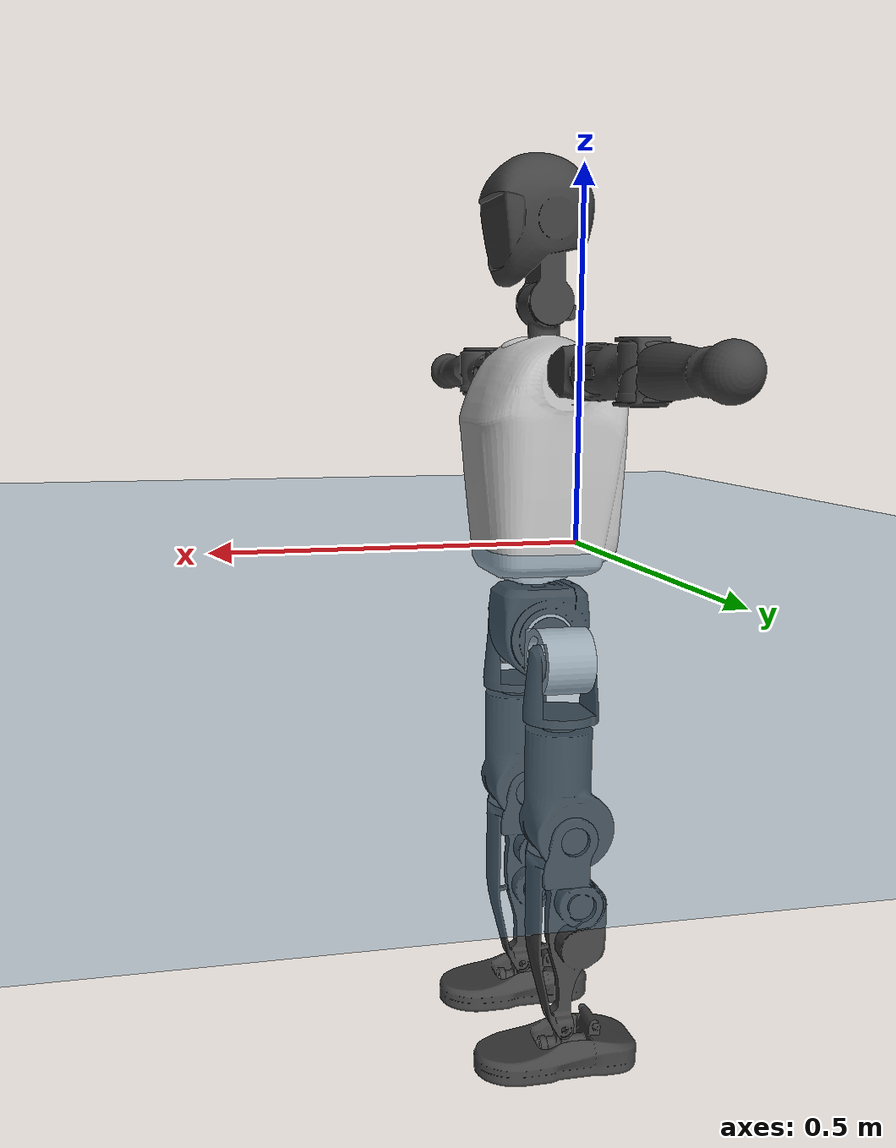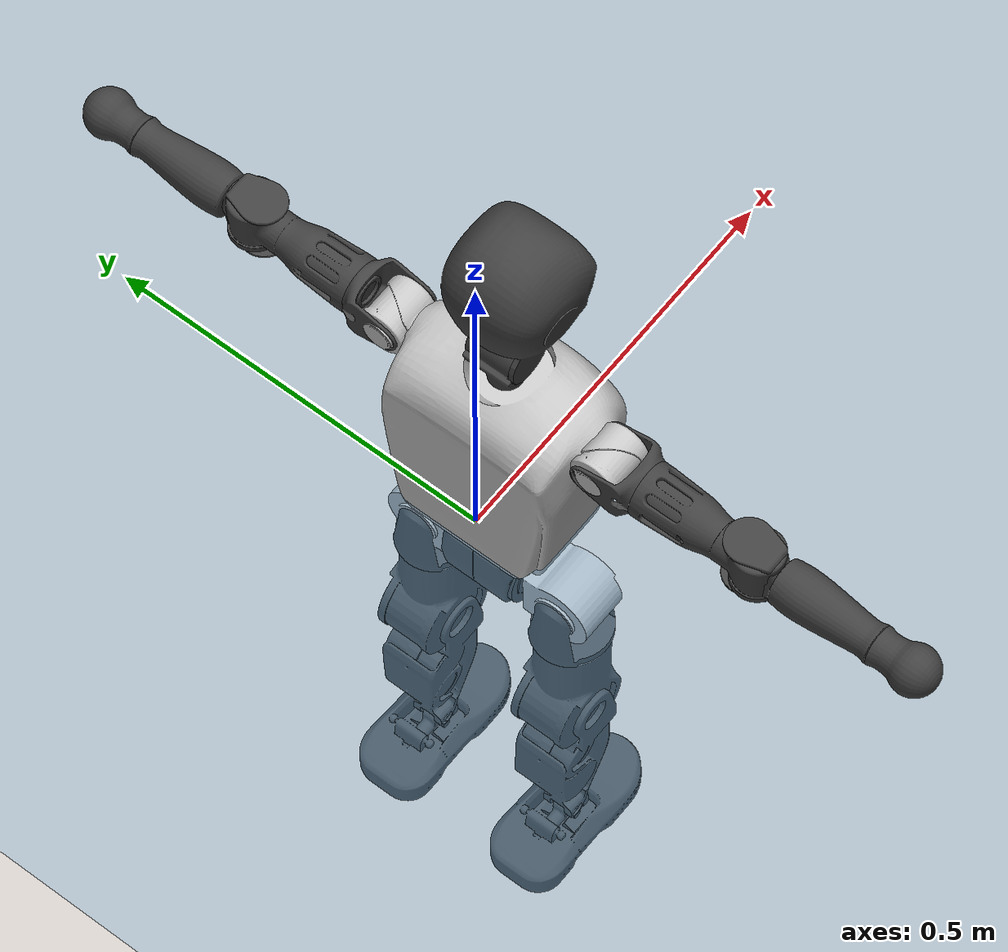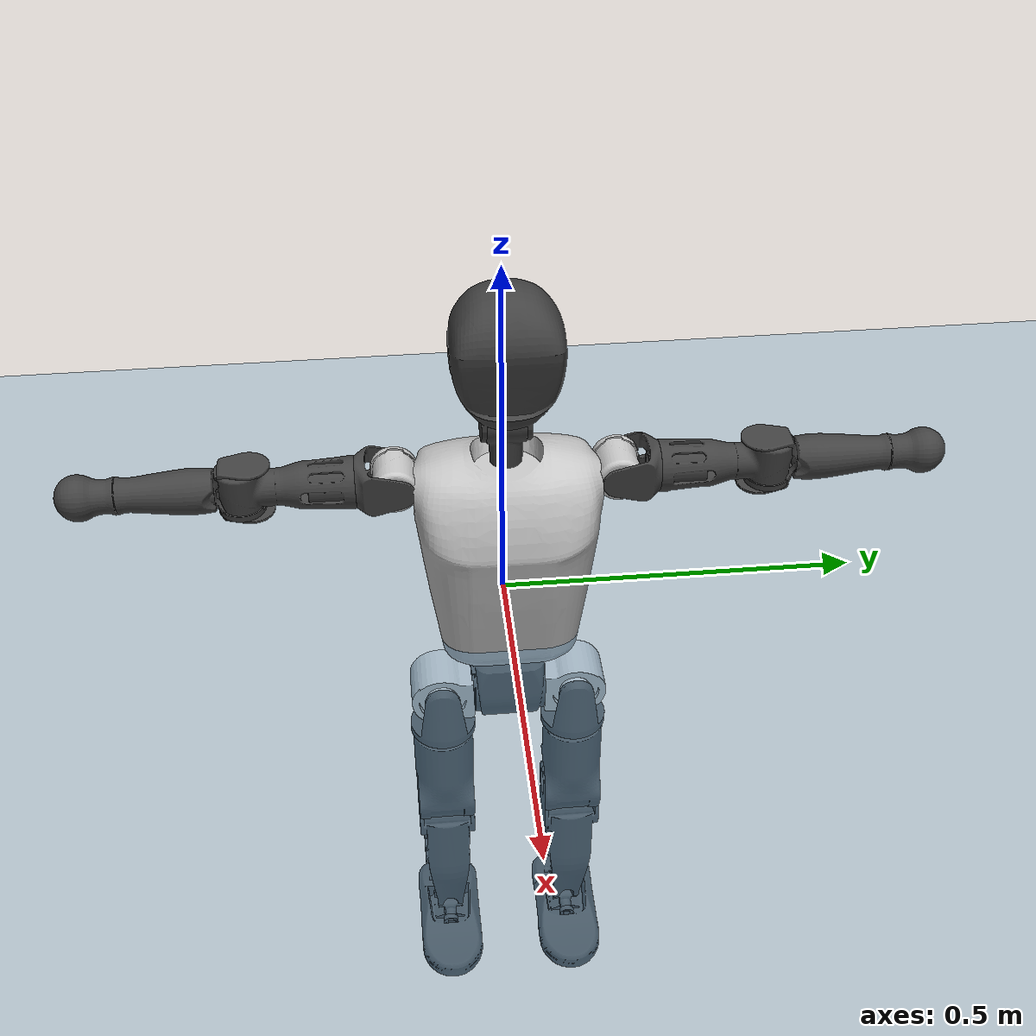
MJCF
<mujoco model="T1">
  <compiler angle="radian" assetdir="assets" balanceinertia="true" inertiafromgeom="false"/>

  <option timestep="0.005" density="1.2" viscosity="2e-05"/>

  <size nkey="1"/>

  <visual>
    <quality shadowsize="8192"/>
    <map shadowclip="0.5"/>
  </visual>

  <default>
    <default class="/">
      <joint armature="0.01" damping="0.01" frictionloss="0.1"/>
      <geom contype="0" conaffinity="0" group="1" solref="-1000 -80"/>
      <site size="0.01 0.005 0.005" group="5"/>
      <general forcelimited="true" biastype="affine" gainprm="25" biasprm="0 -25 -0.6"/>
      <default class="t1">
        <geom rgba="0.25 0.25 0.25 1"/>
        <default class="visual">
          <geom type="mesh" group="2"/>
        </default>
        <default class="collision">
          <geom group="3"/>
        </default>
        <default class="foot">
          <geom size="0.1115 0.05 0.015" type="box" condim="6" group="4" priority="1" solimp="0.015 1 0.015"/>
        </default>
        <default class="reward_collision_sphere">
          <geom group="5" rgba="1 0 0 1"/>
        </default>
      </default>
    </default>
  </default>

  <asset>
    <texture type="skybox" colorspace="auto" name="//unnamed_texture_0" builtin="gradient" rgb1="0.95 0.95 0.95" rgb2="0.95 0.95 0.95" width="100" height="600"/>
    <texture type="2d" colorspace="auto" name="texplane" builtin="checker" rgb1="0.345 0.575 0.748" rgb2="0.345 0.575 0.748" markrgb="1 1 1" width="512" height="512"/>
    <material name="MatPlane" class="/" texture="texplane" texuniform="true" texrepeat="2 2" specular="0.9"/>
    <mesh name="Trunk" class="/" file="Trunk.stl"/>
    <mesh name="H1" class="/" file="H1.stl"/>
    <mesh name="H2" class="/" file="H2.stl"/>
    <mesh name="AL1" class="/" file="AL1.stl"/>
    <mesh name="AL2" class="/" file="AL2.stl"/>
    <mesh name="AL3" class="/" file="AL3.stl"/>
    <mesh name="left_hand_link" class="/" file="left_hand_link.stl"/>
    <mesh name="AR1" class="/" file="AR1.stl"/>
    <mesh name="AR2" class="/" file="AR2.stl"/>
    <mesh name="AR3" class="/" file="AR3.stl"/>
    <mesh name="right_hand_link" class="/" file="right_hand_link.stl"/>
    <mesh name="Waist" class="/" file="Waist.stl"/>
    <mesh name="Hip_Pitch_Left" class="/" file="Hip_Pitch_Left.stl"/>
    <mesh name="Hip_Roll_Left" class="/" file="Hip_Roll_Left.stl"/>
    <mesh name="Hip_Yaw_Left" class="/" file="Hip_Yaw_Left.stl"/>
    <mesh name="Shank_Left" class="/" file="Shank_Left.stl"/>
    <mesh name="Ankle_Cross_Left" class="/" file="Ankle_Cross_Left.stl"/>
    <mesh name="left_foot_link" class="/" file="left_foot_link.stl"/>
    <mesh name="Hip_Pitch_Right" class="/" file="Hip_Pitch_Right.stl"/>
    <mesh name="Hip_Roll_Right" class="/" file="Hip_Roll_Right.stl"/>
    <mesh name="Hip_Yaw_Right" class="/" file="Hip_Yaw_Right.stl"/>
    <mesh name="Shank_Right" class="/" file="Shank_Right.stl"/>
    <mesh name="Ankle_Cross_Right" class="/" file="Ankle_Cross_Right.stl"/>
    <mesh name="right_foot_link" class="/" file="right_foot_link.stl"/>
  </asset>

  <worldbody>
    <geom name="floor" class="/" size="100 100 0.125" type="plane" group="0" material="MatPlane"/>
    <light name="toplight_shadow" class="/" pos="0 0 5" dir="0.0990148 0.0990148 -0.990148" type="directional" ambient="0.04 0.04 0.04" diffuse="0.55 0.55 0.55" specular="0.12 0.12 0.12"/>
    <light name="toplight_fill" class="/" pos="0 0 5" dir="0.0990148 0.0990148 -0.990148" type="directional" castshadow="false" ambient="0.04 0.04 0.04" diffuse="0.3 0.3 0.3" specular="0.08 0.08 0.08"/>
    <body name="trunk" childclass="t1" pos="0.00031514 0.000267866 -0.000727775" quat="1 -8.39761e-06 2.50502e-05 5.4623e-05">
      <inertial pos="0.0453834 -4.5598e-05 0.110752" quat="0.999957 -2.27754e-05 -0.00922029 4.15279e-05" mass="9.61822" diaginertia="0.0373681 0.0507066 0.0741698"/>
      <joint name="//unnamed_joint_0" type="free" armature="0" damping="0" frictionloss="0"/>
      <geom name="//unnamed_geom_1" class="visual" rgba="0.76 0.76 0.76 1" mesh="Trunk"/>
      <geom name="//unnamed_geom_2" class="collision" size="0.0702276 0.0936368 0.140455" pos="0.0500936 0 0.126855" type="box"/>
      <geom name="//unnamed_geom_3" class="reward_collision_sphere" size="0.107682" pos="0.0500936 0 0.105712"/>
      <geom name="//unnamed_geom_4" class="reward_collision_sphere" size="0.0140455" pos="0.0500936 0.0779526 0"/>
      <geom name="//unnamed_geom_5" class="reward_collision_sphere" size="0.0140455" pos="0.0500936 -0.0779526 0"/>
      <geom name="//unnamed_geom_6" class="reward_collision_sphere" size="0.0140455" pos="0.0500936 0.0981286 0.190282"/>
      <geom name="//unnamed_geom_7" class="reward_collision_sphere" size="0.0140455" pos="0.0500936 -0.0981286 0.190282"/>
      <site name="imu" pos="-0.00363796 -0.00143271 0.00179478" size="0.00936368"/>
      <camera name="track" pos="0 -1.83418 0" quat="0.707107 0.707107 0 0" mode="trackcom"/>
      <camera name="ego_camera" pos="0.101857 0 0.443991" quat="-0.5 -0.5 0.5 0.5"/>
      <body name="H1" pos="0.0513207 -0.000491511 0.257497" quat="1 1.16291e-05 -1.68507e-06 -1.51729e-06">
        <inertial pos="-0.0007569 -0.0018766 0.059976" quat="0.766419 -0.0137752 0.000437938 0.642193" mass="0.36615" diaginertia="9.92138e-05 0.000144922 0.000200225"/>
        <joint name="AAHead_yaw" pos="0 0 0" axis="0.00175074 0.000832958 0.999998" stiffness="2.23228e-05" range="-1.56119 1.58238" armature="0.00960192" damping="0.00503256" frictionloss="0.0975369"/>
        <geom name="//unnamed_geom_8" class="visual" mesh="H1"/>
        <body name="H2" pos="-0.000393231 -0.000132489 0.0644693" quat="1 1.10781e-05 2.94369e-05 1.80848e-06">
          <inertial pos="0.00611729 0.000967784 0.104219" quat="0.988508 0.106119 -0.072788 -0.079328" mass="0.520476" diaginertia="0.000836106 0.00124758 0.00228967"/>
          <joint name="Head_pitch" pos="0 0 0" axis="0.00173983 -0.999998 0.00083328" range="-1.21672 0.347445" armature="0.00923077" damping="0.00667182" frictionloss="0.0920007"/>
          <geom name="//unnamed_geom_9" class="visual" mesh="H2"/>
          <geom name="//unnamed_geom_10" class="collision" size="0.0749095" pos="0.00834894 0 0.116283"/>
          <geom name="//unnamed_geom_11" class="reward_collision_sphere" size="0.0842732" pos="0.0166979 0 0.105712"/>
        </body>
      </body>
      <body name="AL1" pos="0.0492306 0.0986034 0.23154" quat="1 2.55389e-05 0.000432082 -2.21752e-05">
        <inertial pos="0.000187226 0.0411332 0.000168417" quat="0.505175 0.497388 -0.501759 0.495622" mass="0.432959" diaginertia="0.000556011 0.000831827 0.000385061"/>
        <joint name="Left_Shoulder_Pitch" pos="0 0 0" axis="0.00279751 0.999995 -0.00167194" range="-3.30949 1.21213" armature="0.00937401" damping="0.00783242" frictionloss="0.0918308"/>
        <geom name="//unnamed_geom_12" class="visual" rgba="0.76 0.76 0.76 1" mesh="AL1"/>
        <body name="AL2" pos="0.00122324 0.0436886 0.000674527" quat="1 4.77282e-05 3.3214e-06 -8.16251e-05">
          <inertial pos="0.00268874 0.0356047 -0.000103498" quat="0.488875 0.511404 -0.487778 0.51141" mass="0.130721" diaginertia="0.000161884 0.000224727 0.000231579"/>
          <joint name="Left_Shoulder_Roll" pos="0 0 0" axis="-0.999999 -8.93363e-05 -0.00132273" range="-1.56018 1.7226" armature="0.00932581" damping="0.00425982" frictionloss="0.0934587"/>
          <geom name="//unnamed_geom_13" class="visual" mesh="AL2"/>
          <body name="AL3" pos="0.000345274 0.0557098 -0.000179268" quat="1 0.000256347 -2.22714e-05 -5.53198e-06">
            <inertial pos="-0.00082991 0.077933 -0.000194712" quat="0.706602 0.707609 0.00176289 -0.000941573" mass="0.82843" diaginertia="0.00516735 0.00828388 0.000816159"/>
            <joint name="Left_Elbow_Pitch" pos="0 0 0" axis="0.00122077 -0.999999 0.00109075" range="-2.27782 2.27042" armature="0.00973847" damping="0.00970416" frictionloss="0.091483"/>
            <geom name="//unnamed_geom_14" class="visual" mesh="AL3"/>
            <geom name="//unnamed_geom_15" class="collision" size="0.0280911 0.0702276" pos="0 0.0458545 0" quat="0.707105 0.707108 0 0" type="cylinder"/>
            <geom name="//unnamed_geom_16" class="reward_collision_sphere" size="0.0337093"/>
            <body name="left_hand_link" pos="0.00112271 0.135036 0.000193944" quat="1 1.47493e-05 -2.64044e-05 2.32719e-05">
              <inertial pos="-0.0001546 0.101386 -0.000463029" quat="0.70656 0.707644 -0.00146565 0.00318191" mass="0.267485" diaginertia="0.00328811 0.00529466 0.000284162"/>
              <joint name="Left_Elbow_Yaw" pos="0 0 0" axis="-0.00316653 0.001836 0.999993" range="-2.45202 0.00756537" armature="0.009368" damping="0.0104371" frictionloss="0.0926568"/>
              <geom name="//unnamed_geom_17" class="visual" mesh="left_hand_link"/>
              <geom name="//unnamed_geom_18" class="collision" size="0.0280911 0.0819322" pos="0 0.119222 0" quat="0.707105 0.707108 0 0" type="cylinder"/>
              <geom name="//unnamed_geom_19" class="reward_collision_sphere" size="0.0468184"/>
              <geom name="//unnamed_geom_20" class="reward_collision_sphere" size="0.0327729" pos="0 0.10088 0"/>
              <geom name="//unnamed_geom_21" class="reward_collision_sphere" size="0.0327729" pos="0 0.197174 0"/>
            </body>
          </body>
        </body>
      </body>
      <body name="AR1" pos="0.0466709 -0.0969275 0.231596" quat="1 -0.000292354 0.000455525 2.88838e-05">
        <inertial pos="-0.00126904 -0.0412573 0.000363749" quat="0.504562 0.496795 -0.503208 0.495373" mass="0.439495" diaginertia="0.000559475 0.00084478 0.000390116"/>
        <joint name="Right_Shoulder_Pitch" pos="0 0 0" axis="-0.000800137 -1 0.000384368" range="-1.23843 3.31612" armature="0.00931739" damping="0.00420507" frictionloss="0.0907092"/>
        <geom name="//unnamed_geom_22" class="visual" rgba="0.76 0.76 0.76 1" mesh="AR1"/>
        <body name="AR2" pos="-0.000705029 -0.0415818 -0.00027552" quat="1 0.000346097 -0.000179586 -0.000401317">
          <inertial pos="0.00403575 -0.0346286 0.00125591" quat="0.514886 0.48658 -0.510013 0.487872" mass="0.133603" diaginertia="0.000164536 0.000227318 0.000233225"/>
          <joint name="Right_Shoulder_Roll" pos="0 0 0" axis="-0.999995 -0.00283774 -0.00147005" stiffness="0.00304011" range="-1.73494 1.57596" armature="0.00932707" damping="0.00605754" frictionloss="0.0924376"/>
          <geom name="//unnamed_geom_23" class="visual" mesh="AR2"/>
          <body name="AR3" pos="-0.000241851 -0.0553746 -0.00029953" quat="1 -0.000255804 -1.65314e-05 9.18257e-05">
            <inertial pos="0.000314481 -0.0786427 -6.85154e-05" quat="0.707926 0.706286 0.000291714 -0.000319942" mass="0.845649" diaginertia="0.00526091 0.00838549 0.00083015"/>
            <joint name="Right_Elbow_Pitch" pos="0 0 0" axis="0.00044402 1 -0.000672057" stiffness="0.00180456" range="-2.28135 2.264" armature="0.00932451" damping="0.00902077" frictionloss="0.0975305"/>
            <geom name="//unnamed_geom_24" class="visual" mesh="AR3"/>
            <geom name="//unnamed_geom_25" class="collision" size="0.0280911 0.0702276" pos="0 -0.0458545 0" quat="0.707105 0.707108 0 0" type="cylinder"/>
            <geom name="//unnamed_geom_26" class="reward_collision_sphere" size="0.0337093"/>
            <body name="right_hand_link" pos="0.000426181 -0.13423 0.00034258" quat="1 -0.000112743 -0.000110752 3.71693e-05">
              <inertial pos="-0.000310447 -0.100266 0.000502717" quat="0.706312 0.707901 0.000328207 7.94776e-05" mass="0.272123" diaginertia="0.00332918 0.00530129 0.000287501"/>
              <joint name="Right_Elbow_Yaw" pos="0 0 0" axis="0.000140341 0.000174111 1" range="-0.00500734 2.43908" armature="0.00959799" damping="0.00515058" frictionloss="0.0896688"/>
              <geom name="//unnamed_geom_27" class="visual" mesh="right_hand_link"/>
              <geom name="//unnamed_geom_28" class="collision" size="0.0280911 0.0819322" pos="0 -0.119222 0" quat="0.707105 0.707108 0 0" type="cylinder"/>
              <geom name="//unnamed_geom_29" class="reward_collision_sphere" size="0.0468184"/>
              <geom name="//unnamed_geom_30" class="reward_collision_sphere" size="0.0327729" pos="0 -0.10088 0"/>
              <geom name="//unnamed_geom_31" class="reward_collision_sphere" size="0.0327729" pos="0 -0.197174 0"/>
            </body>
          </body>
        </body>
      </body>
      <body name="Waist" pos="0.0522346 -4.39612e-05 -0.121421" quat="1 -3.64552e-05 0.000121067 -1.32232e-05">
        <inertial pos="0.0016443 -0.00131417 0.0086823" quat="0.983687 0.00232228 -0.17985 0.00280419" mass="2.11318" diaginertia="0.00217628 0.00342002 0.0062084"/>
        <joint name="Waist" pos="0 0 0" axis="-0.0044342 0.00169373 0.999989" range="-1.57145 1.58088" armature="0.00941077" damping="0.0105239" frictionloss="0.0942232"/>
        <geom name="//unnamed_geom_32" class="visual" mesh="Waist"/>
        <body name="Hip_Pitch_Left" pos="0.000259445 0.0975016 0.000671835" quat="1 0.000232653 -0.000332348 -9.31145e-05">
          <inertial pos="0.000949916 -0.00723265 -0.0194029" quat="0.975064 0.221433 0.0146052 0.00211144" mass="0.827083" diaginertia="0.000724788 0.000929112 0.00163138"/>
          <joint name="Left_Hip_Pitch" pos="0 0 0" axis="0.00132037 0.999982 0.00593371" range="-1.80727 1.56123" armature="0.00897283" damping="0.00774844" frictionloss="0.092333"/>
          <geom name="//unnamed_geom_33" class="visual" rgba="0.76 0.76 0.76 1" mesh="Hip_Pitch_Left"/>
          <body name="Hip_Roll_Left" pos="0.00104589 0.000674713 -0.0228725" quat="1 -2.32927e-05 -5.85748e-05 8.87635e-05">
            <inertial pos="0.00127092 -0.000612537 -0.0561219" quat="0.707106 -0.00576413 -0.00571566 0.707061" mass="0.319391" diaginertia="0.000715008 0.000988151 0.000692449"/>
            <joint name="Left_Hip_Roll" pos="0 0 0" axis="-0.999986 0.00404268 0.00343524" range="-1.57877 0.186648" armature="0.00957673" damping="0.0036539" frictionloss="0.0905668"/>
            <geom name="//unnamed_geom_34" class="visual" mesh="Hip_Roll_Left"/>
            <geom name="//unnamed_geom_35" class="reward_collision_sphere" size="0.0515003"/>
            <body name="Hip_Yaw_Left" pos="-0.000314171 0.000574256 -0.0878129" quat="1 0.000199663 -0.000261967 0.000319452">
              <inertial pos="-0.00529698 -8.81131e-05 -0.0936902" quat="0.6968 -0.0338984 -0.0314523 0.715774" mass="1.78666" diaginertia="0.0105405 0.016275 0.00340786"/>
              <joint name="Left_Hip_Yaw" pos="0 0 0" axis="0.000520594 0.00275903 -0.999996" range="-1.01877 1.00169" armature="0.00933874" damping="0.00754916" frictionloss="0.0935383"/>
              <geom name="//unnamed_geom_36" class="visual" mesh="Hip_Yaw_Left"/>
              <geom name="//unnamed_geom_37" class="collision" size="0.0468184 0.0749095" type="cylinder"/>
              <body name="Shank_Left" pos="-0.0118895 4.61849e-05 -0.144218" quat="1 9.1325e-06 2.74543e-06 -6.06833e-06">
                <inertial pos="-0.00433559 0.000864655 -0.131734" quat="0.997473 0.00301704 -0.0207847 0.0678657" mass="1.42593" diaginertia="0.0140083 0.0223871 0.00248578"/>
                <joint name="Left_Knee_Pitch" pos="0 0 0" axis="-0.00184436 0.999992 -0.00341586" range="-0.000983783 2.35774" armature="0.00894727" damping="0.0124281" frictionloss="0.0950923"/>
                <geom name="//unnamed_geom_38" class="visual" mesh="Shank_Left"/>
                <geom name="//unnamed_geom_39" class="collision" size="0.0468184 0.0702276" pos="0 0 -0.126855" type="cylinder"/>
                <geom name="//unnamed_geom_40" class="reward_collision_sphere" size="0.0608639"/>
                <body name="Ankle_Cross_Left" pos="-0.00072034 -7.4867e-05 -0.295182" quat="1 -0.000279008 0.000143865 0.000356708">
                  <inertial pos="-0.0037152 0.000744604 -0.00928078" quat="0.443692 0.550512 0.551233 0.442962" mass="0.0601052" diaginertia="1.19039e-05 1.66575e-05 1.49243e-05"/>
                  <joint name="Left_Ankle_Pitch" pos="0 0 0" axis="-0.000105648 1 0.000499161" range="-0.872945 0.348704" armature="0.00973379" damping="0.00680641" frictionloss="0.0923029"/>
                  <geom name="//unnamed_geom_41" class="visual" mesh="Ankle_Cross_Left"/>
                  <body name="left_foot_link" pos="0.00016794 0.000663542 -0.012718" quat="1 0.000349642 -0.000109884 -5.23686e-05">
                    <inertial pos="0.000541248 0.000944873 -0.00996054" quat="9.87058e-05 0.620752 0.000115302 0.784007" mass="0.565452" diaginertia="0.00111198 0.00156057 0.00291317"/>
                    <joint name="Left_Ankle_Roll" pos="0 0 0" axis="-0.999976 0.00281346 0.00637252" range="-0.437631 0.42265" armature="0.0092949" damping="0.0104804" frictionloss="0.0915049"/>
                    <geom name="//unnamed_geom_42" class="visual" mesh="left_foot_link"/>
                    <geom name="left_foot" class="foot" size="0.100857 0.0482688 0.0138014" pos="0.00834894 0 -0.0158568"/>
                    <geom name="//unnamed_geom_44" class="reward_collision_sphere" size="0.0486912" pos="0.00834894 0 -0.0158568"/>
                    <geom name="//unnamed_geom_45" class="reward_collision_sphere" size="0.0280911" pos="0.0793149 -0.0210931 -0.0158568"/>
                    <geom name="//unnamed_geom_46" class="reward_collision_sphere" size="0.0280911" pos="-0.0584426 -0.0210931 -0.0158568"/>
                    <site name="left_foot" class="foot" pos="0.00834894 0 -0.0158568" size="0.00936368"/>
                  </body>
                </body>
              </body>
            </body>
          </body>
        </body>
        <body name="Hip_Pitch_Right" pos="0.000455492 -0.0964177 -0.000912467" quat="1 5.27461e-05 -0.000240595 -1.10793e-05">
          <inertial pos="0.000170323 0.00707381 -0.018917" quat="0.973482 -0.228159 0.0161292 -0.00398532" mass="0.836736" diaginertia="0.000726428 0.000939945 0.00163589"/>
          <joint name="Right_Hip_Pitch" pos="0 0 0" axis="-0.000878216 -1 -0.000460695" stiffness="0.000575805" range="-1.58085 1.81729" armature="0.00949577" damping="0.00494939" frictionloss="0.0919395"/>
          <geom name="//unnamed_geom_47" class="visual" rgba="0.76 0.76 0.76 1" mesh="Hip_Pitch_Right"/>
          <body name="Hip_Roll_Right" pos="0.000142813 7.6699e-05 -0.0221391" quat="1 0.000123896 -8.56044e-05 -0.000218662">
            <inertial pos="0.00198537 1.26951e-06 -0.0575204" quat="0.707584 -0.0050392 -0.00696795 0.706577" mass="0.31332" diaginertia="0.000707658 0.000978249 0.000678791"/>
            <joint name="Right_Hip_Roll" pos="0 0 0" axis="-0.999997 0.00179155 -0.00162269" stiffness="0.00048985" range="-0.209205 1.5658" armature="0.00948897" damping="0.0063797" frictionloss="0.0897182"/>
            <geom name="//unnamed_geom_48" class="visual" mesh="Hip_Roll_Right"/>
            <geom name="//unnamed_geom_49" class="reward_collision_sphere" size="0.0515003"/>
            <body name="Hip_Yaw_Right" pos="-0.000532777 -0.000335106 -0.0867069" quat="1 -4.67624e-06 -9.76196e-06 -1.78844e-05">
              <inertial pos="-0.00567558 -0.0005805 -0.0953037" quat="0.714496 -0.0316272 -0.0337667 0.698108" mass="1.79094" diaginertia="0.0105356 0.0163816 0.0034598"/>
              <joint name="Right_Hip_Yaw" pos="0 0 0" axis="0.00397198 -0.00172475 -0.999991" stiffness="0.00109752" range="-1.00796 0.997664" armature="0.00952347" damping="0.0110377" frictionloss="0.0938575"/>
              <geom name="//unnamed_geom_50" class="visual" mesh="Hip_Yaw_Right"/>
              <geom name="//unnamed_geom_51" class="collision" size="0.0468184 0.0749095" type="cylinder"/>
              <body name="Shank_Right" pos="-0.0115032 -0.00067024 -0.142611" quat="1 9.05875e-06 7.93709e-06 1.42087e-06">
                <inertial pos="-0.00517802 0.000347633 -0.129499" quat="0.999339 -0.00334572 -0.0224208 -0.0284104" mass="1.46867" diaginertia="0.0143395 0.0227486 0.00260488"/>
                <joint name="Right_Knee_Pitch" pos="0 0 0" axis="-0.000395704 -0.999994 -0.00330577" range="-2.34078 -0.00344975" armature="0.00920095" damping="0.00678761" frictionloss="0.0924567"/>
                <geom name="//unnamed_geom_52" class="visual" mesh="Shank_Right"/>
                <geom name="//unnamed_geom_53" class="collision" size="0.0468184 0.0702276" pos="0 0 -0.126855" type="cylinder"/>
                <geom name="//unnamed_geom_54" class="reward_collision_sphere" size="0.0608639"/>
                <body name="Ankle_Cross_Right" pos="0.000843013 -0.000145365 -0.295639" quat="1 6.27239e-05 7.63062e-05 4.57133e-05">
                  <inertial pos="-0.00261527 -0.000606108 -0.00846556" quat="0.443386 0.550777 0.551066 0.443148" mass="0.0604211" diaginertia="1.17282e-05 1.67803e-05 1.49249e-05"/>
                  <joint name="Right_Ankle_Pitch" pos="0 0 0" axis="0.00109915 -0.999999 0.00118851" range="-0.368 0.882158" armature="0.00939659" damping="0.00183675" frictionloss="0.0933328"/>
                  <geom name="//unnamed_geom_55" class="visual" mesh="Ankle_Cross_Right"/>
                  <body name="right_foot_link" pos="-0.000351647 -0.00130782 -0.0104987" quat="1 4.1219e-05 1.5766e-05 -1.56815e-05">
                    <inertial pos="1.44519e-05 -0.00039176 -0.0103018" quat="-0.00109604 0.620953 -0.00101251 0.783846" mass="0.560336" diaginertia="0.00108267 0.00152849 0.00283933"/>
                    <joint name="Right_Ankle_Roll" pos="0 0 0" axis="-1 -0.000728508 -0.000639421" range="-0.428898 0.443714" armature="0.00891659" damping="0.00142326" frictionloss="0.0899096"/>
                    <geom name="//unnamed_geom_56" class="visual" mesh="right_foot_link"/>
                    <geom name="right_foot" class="foot" size="0.101244 0.0477199 0.0140515" pos="0.00834894 0 -0.0158568"/>
                    <geom name="//unnamed_geom_58" class="reward_collision_sphere" size="0.0374547"/>
                    <geom name="//unnamed_geom_59" class="reward_collision_sphere" size="0.0280911" pos="0.00834894 0 -0.0158568"/>
                    <geom name="//unnamed_geom_60" class="reward_collision_sphere" size="0.0280911" pos="0.0793149 0.0210931 -0.0158568"/>
                    <geom name="//unnamed_geom_61" class="reward_collision_sphere" size="0.0280911" pos="-0.0584426 0.0210931 -0.0158568"/>
                    <site name="right_foot" class="foot" pos="0.00834894 0 -0.0158568" size="0.00936368"/>
                  </body>
                </body>
              </body>
            </body>
          </body>
        </body>
      </body>
    </body>
  </worldbody>

  <contact>
    <pair class="/" geom1="floor" geom2="left_foot" name="//unnamed_contact_0"/>
    <pair class="/" geom1="floor" geom2="right_foot" name="//unnamed_contact_1"/>
  </contact>

  <actuator>
    <general name="AAHead_yaw" class="/" joint="AAHead_yaw" forcerange="-6.5628 6.5628" gainprm="23.6696" biasprm="0 -23.6696 -0.539026"/>
    <general name="Head_pitch" class="/" joint="Head_pitch" forcerange="-6.54608 6.54608" gainprm="23.6696" biasprm="0 -23.6696 -0.539026"/>
    <general name="Left_Shoulder_Pitch" class="/" joint="Left_Shoulder_Pitch" forcerange="-16.251 16.251" gainprm="23.6696" biasprm="0 -23.6696 -0.539026"/>
    <general name="Left_Shoulder_Roll" class="/" joint="Left_Shoulder_Roll" forcerange="-16.848 16.848" gainprm="23.6696" biasprm="0 -23.6696 -0.539026"/>
    <general name="Left_Elbow_Pitch" class="/" joint="Left_Elbow_Pitch" forcerange="-16.3698 16.3698" gainprm="23.6696" biasprm="0 -23.6696 -0.539026"/>
    <general name="Left_Elbow_Yaw" class="/" joint="Left_Elbow_Yaw" forcerange="-16.858 16.858" gainprm="23.6696" biasprm="0 -23.6696 -0.539026"/>
    <general name="Right_Shoulder_Pitch" class="/" joint="Right_Shoulder_Pitch" forcerange="-16.7101 16.7101" gainprm="23.6696" biasprm="0 -23.6696 -0.539026"/>
    <general name="Right_Shoulder_Roll" class="/" joint="Right_Shoulder_Roll" forcerange="-16.3646 16.3646" gainprm="23.6696" biasprm="0 -23.6696 -0.539026"/>
    <general name="Right_Elbow_Pitch" class="/" joint="Right_Elbow_Pitch" forcerange="-17.2103 17.2103" gainprm="23.6696" biasprm="0 -23.6696 -0.539026"/>
    <general name="Right_Elbow_Yaw" class="/" joint="Right_Elbow_Yaw" forcerange="-16.6087 16.6087" gainprm="23.6696" biasprm="0 -23.6696 -0.539026"/>
    <general name="Waist" class="/" joint="Waist" forcerange="-28.7567 28.7567" gainprm="23.6696" biasprm="0 -23.6696 -0.539026"/>
    <general name="Left_Hip_Pitch" class="/" joint="Left_Hip_Pitch" forcerange="-42.2789 42.2789" gainprm="23.6696" biasprm="0 -23.6696 -0.539026"/>
    <general name="Left_Hip_Roll" class="/" joint="Left_Hip_Roll" forcerange="-27.83 27.83" gainprm="23.6696" biasprm="0 -23.6696 -0.539026"/>
    <general name="Left_Hip_Yaw" class="/" joint="Left_Hip_Yaw" forcerange="-29.0353 29.0353" gainprm="23.6696" biasprm="0 -23.6696 -0.539026"/>
    <general name="Left_Knee_Pitch" class="/" joint="Left_Knee_Pitch" forcerange="-55.4612 55.4612" gainprm="23.6696" biasprm="0 -23.6696 -0.539026"/>
    <general name="Left_Ankle_Pitch" class="/" joint="Left_Ankle_Pitch" forcerange="-18.7002 18.7002" gainprm="23.6696" biasprm="0 -23.6696 -0.539026"/>
    <general name="Left_Ankle_Roll" class="/" joint="Left_Ankle_Roll" forcerange="-14.075 14.075" gainprm="23.6696" biasprm="0 -23.6696 -0.539026"/>
    <general name="Right_Hip_Pitch" class="/" joint="Right_Hip_Pitch" forcerange="-42.0031 42.0031" gainprm="23.6696" biasprm="0 -23.6696 -0.539026"/>
    <general name="Right_Hip_Roll" class="/" joint="Right_Hip_Roll" forcerange="-28.7786 28.7786" gainprm="23.6696" biasprm="0 -23.6696 -0.539026"/>
    <general name="Right_Hip_Yaw" class="/" joint="Right_Hip_Yaw" forcerange="-28.0378 28.0378" gainprm="23.6696" biasprm="0 -23.6696 -0.539026"/>
    <general name="Right_Knee_Pitch" class="/" joint="Right_Knee_Pitch" forcerange="-54.4517 54.4517" gainprm="23.6696" biasprm="0 -23.6696 -0.539026"/>
    <general name="Right_Ankle_Pitch" class="/" joint="Right_Ankle_Pitch" forcerange="-18.3399 18.3399" gainprm="23.6696" biasprm="0 -23.6696 -0.539026"/>
    <general name="Right_Ankle_Roll" class="/" joint="Right_Ankle_Roll" forcerange="-13.7654 13.7654" gainprm="23.6696" biasprm="0 -23.6696 -0.539026"/>
  </actuator>

  <sensor>
    <gyro site="imu" name="imu_angular_velocity"/>
    <velocimeter site="imu" name="imu_linear_velocity"/>
    <framelinvel objtype="site" objname="left_foot" name="left_foot_global_linear_velocity"/>
    <framelinvel objtype="site" objname="right_foot" name="right_foot_global_linear_velocity"/>
  </sensor>

  <keyframe>
    <key name="home" qpos="0 0 0.6385 1 0 0 0 0 0 0 1.4 0 -0.4 0 -1.4 0 0.4 0 -0.4 0 0 0.8 -0.4 0 0.4 0 0 -0.8 0.4 0"/>
  </keyframe>
</mujoco>
